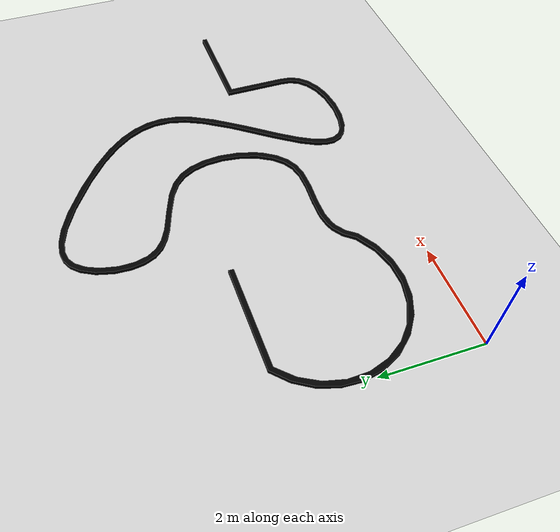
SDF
<?xml version="1.0" ?>
<sdf version="1.10">
    <world name="car_world">
        <physics name="1ms" type="ignored">
            <max_step_size>0.001</max_step_size>
            <real_time_factor>1.0</real_time_factor>
        </physics>
        <plugin
            filename="gz-sim-physics-system"
            name="gz::sim::systems::Physics">
        </plugin>
        <plugin
            filename="gz-sim-user-commands-system"
            name="gz::sim::systems::UserCommands">
        </plugin>
        <plugin
            filename="gz-sim-scene-broadcaster-system"
            name="gz::sim::systems::SceneBroadcaster">
        </plugin>
        <plugin
            filename="gz-sim-sensors-system"
            name="gz::sim::systems::Sensors">
        <render_engine>ogre2</render_engine>
        </plugin>
        <light type="directional" name="sun">
            <cast_shadows>true</cast_shadows>
            <pose>0 0 10 0 0 0</pose>
            <diffuse>0.8 0.8 0.8 1</diffuse>
            <specular>0.2 0.2 0.2 1</specular>
            <attenuation>
                <range>1000</range>
                <constant>0.9</constant>
                <linear>0.01</linear>
                <quadratic>0.001</quadratic>
            </attenuation>
            <direction>-0.5 0.1 -0.9</direction>
        </light>

        <model name="ground_plane">
            <static>true</static>
            <link name="link">
                <collision name="collision">
                <geometry>
                    <plane>
                    <normal>0 0 1</normal>
                    </plane>
                </geometry>
                </collision>
                <visual name="visual">
                <geometry>
                    <plane>
                    <normal>0 0 1</normal>
                    <size>100 100</size>
                    </plane>
                </geometry>
                <material>
                    <ambient>0.8 0.8 0.8 1</ambient>
                    <diffuse>0.8 0.8 0.8 1</diffuse>
                    <specular>0.8 0.8 0.8 1</specular>
                </material>
                </visual>
            </link>
        </model>

        <model name="track_model">
            <static>true</static>
            <link name="link">
                <pose>0 0 -0.13 1.5708 0 1.5708</pose> <!-- Rotate 90 degrees around x-axis -->
                <visual name="visual">
                    <geometry>
                        <mesh>
                            <uri>package://robot_package/meshes/path.STL</uri>
                            <scale>0.001 0.001 0.001</scale>
                        </mesh>
                    </geometry>
                    <material>
                        <ambient>0.0 0.0 0.0 1</ambient>
                        <diffuse>0.0 0.0 0.0 1</diffuse>
                        <specular>0.0 0.0 0.0 1</specular>
                    </material>
                </visual>
            </link>
        </model>

    </world>
</sdf>
